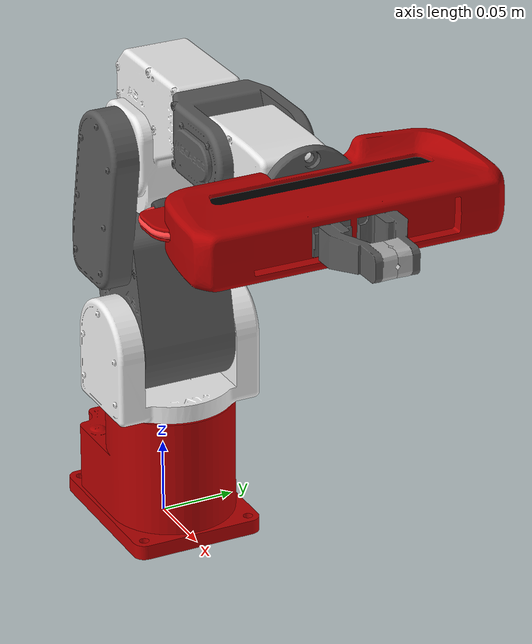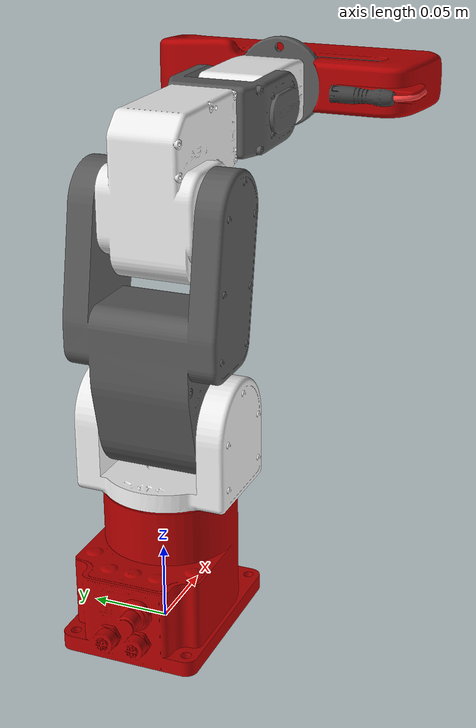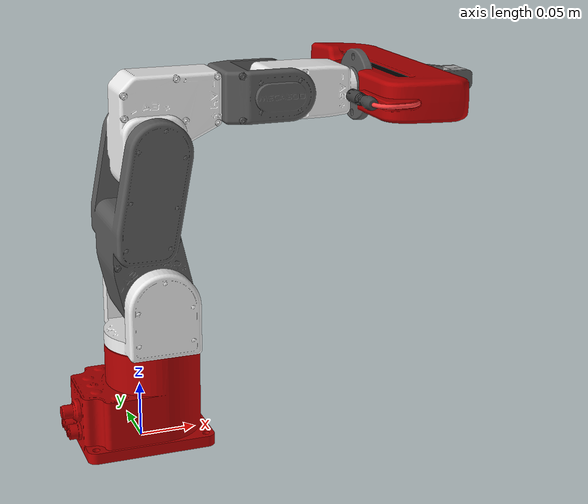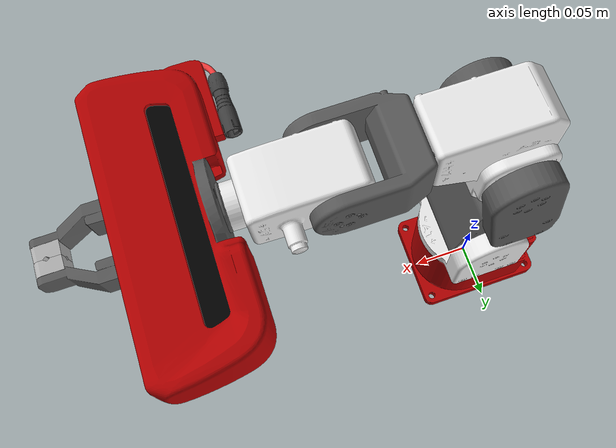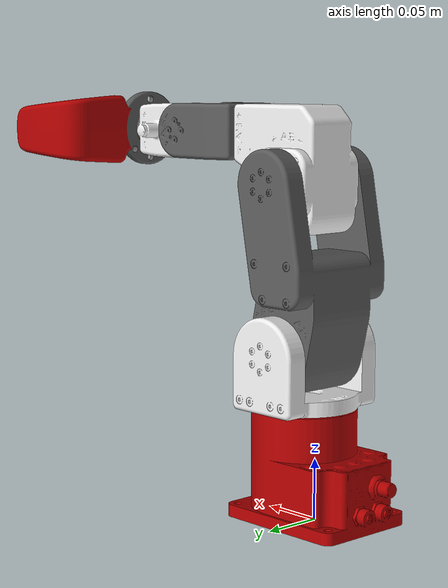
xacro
<?xml version="1.0" encoding="utf-8"?>
<!-- |    This document was autogenerated by xacro from /home/ram/Projects/Project-Interstellar/src/mecademic_description/urdf/meca_500_r3.urdf.xacro | -->
<!-- |    EDITING THIS FILE BY HAND IS NOT RECOMMENDED                                 | -->
<robot name="meca_500_r3">
    <!-- Base link is the center of the robot's bottom plate -->
    <link name="world" />
    <joint name="fixed" type="fixed">
        <parent link="world" />
        <child link="meca_base_link" />
    </joint>
    <link name="meca_base_link">
        <visual>
            <origin rpy="0 0 0" xyz="0 0 0" />
            <geometry>
                <mesh filename="package://mecademic_description/meshes/meca_500_r3_base.dae" />
            </geometry>
        </visual>
        <collision>
            <origin rpy="0 0 0" xyz="0 0 0" />
            <geometry>
                <mesh filename="package://mecademic_description/meshes/meca_500_r3_base_collision.stl" />
            </geometry>
        </collision>

        <inertial>
            <mass value="0.1" />
            <inertia ixx="0.03" ixy="0.0" ixz="0.0" iyy="0.03" iyz="0.0" izz="0.03" />
        </inertial>

    </link>
    <!-- Joint 1 -->
    <link name="meca_axis_1_link">
        <visual>
            <origin rpy="0 0 0" xyz="0 0 0" />
            <geometry>
                <mesh filename="package://mecademic_description/meshes/meca_500_r3_j1.dae" />
            </geometry>
        </visual>
        <collision>
            <origin rpy="0 0 0" xyz="0 0 0" />
            <geometry>
                <mesh filename="package://mecademic_description/meshes/meca_500_r3_j1_collision.stl" />
            </geometry>
        </collision>

        <inertial>
            <mass value="0.1" />
            <inertia ixx="0.03" ixy="0.0" ixz="0.0" iyy="0.03" iyz="0.0" izz="0.03" />
        </inertial>

    </link>
    <joint name="meca_axis_1_joint" type="revolute">
        <origin rpy="0 0 0" xyz="0.012498 0 0.091" />
        <parent link="meca_base_link" />
        <child link="meca_axis_1_link" />
        <axis xyz="0 0 1" />
        <limit effort="1000.0" lower="-3.05433" upper="3.05433" velocity="2.61799" />
    </joint>
    <!-- Joint 2 -->
    <link name="meca_axis_2_link">
        <visual>
            <origin rpy="0 0 0" xyz="0 0 0" />
            <geometry>
                <mesh filename="package://mecademic_description/meshes/meca_500_r3_j2.dae" />
            </geometry>
        </visual>
        <collision>
            <origin rpy="0 0 0" xyz="0 0 0" />
            <geometry>
                <mesh filename="package://mecademic_description/meshes/meca_500_r3_j2_collision.stl" />
            </geometry>
        </collision>

        <inertial>
            <mass value="0.1" />
            <inertia ixx="0.03" ixy="0.0" ixz="0.0" iyy="0.03" iyz="0.0" izz="0.03" />
        </inertial>

    </link>
    <joint name="meca_axis_2_joint" type="revolute">
        <origin rpy="0 0 0" xyz="0 0 0.044" />
        <parent link="meca_axis_1_link" />
        <child link="meca_axis_2_link" />
        <axis xyz="0 1 0" />
        <limit effort="1000.0" lower="-1.22173048" upper="1.5708" velocity="2.61799" />
    </joint>
    <!-- Joint 3 -->
    <link name="meca_axis_3_link">
        <visual>
            <origin rpy="0 0 0" xyz="0 0 0" />
            <geometry>
                <mesh filename="package://mecademic_description/meshes/meca_500_r3_j3.dae" />
            </geometry>
        </visual>
        <collision>
            <origin rpy="0 0 0" xyz="0 0 0" />
            <geometry>
                <mesh filename="package://mecademic_description/meshes/meca_500_r3_j3_collision.stl" />
            </geometry>
        </collision>

        <inertial>
            <mass value="0.1" />
            <inertia ixx="0.03" ixy="0.0" ixz="0.0" iyy="0.03" iyz="0.0" izz="0.03" />
        </inertial>

    </link>
    <joint name="meca_axis_3_joint" type="revolute">
        <origin rpy="0 0 0" xyz="0 0 0.135" />
        <parent link="meca_axis_2_link" />
        <child link="meca_axis_3_link" />
        <axis xyz="0 1 0" />
        <limit effort="1000.0" lower="-2.35619" upper="1.22173048" velocity="3.14159" />
    </joint>
    <!-- Joint 4 -->
    <link name="meca_axis_4_link">
        <visual>
            <origin rpy="0 0 0" xyz="0 0 0" />
            <geometry>
                <mesh filename="package://mecademic_description/meshes/meca_500_r3_j4.dae" />
            </geometry>
        </visual>
        <collision>
            <origin rpy="0 0 0" xyz="0 0 0" />
            <geometry>
                <mesh filename="package://mecademic_description/meshes/meca_500_r3_j4_collision.stl" />
            </geometry>
        </collision>

        <inertial>
            <mass value="0.1" />
            <inertia ixx="0.03" ixy="0.0" ixz="0.0" iyy="0.03" iyz="0.0" izz="0.03" />
        </inertial>

    </link>
    <joint name="meca_axis_4_joint" type="revolute">
        <origin rpy="0 0 0" xyz="0 0 0.038" />
        <parent link="meca_axis_3_link" />
        <child link="meca_axis_4_link" />
        <axis xyz="1 0 0" />
        <limit effort="1000.0" lower="-2.96706" upper="2.96706" velocity="5.23599" />
    </joint>
    <!-- Joint 5 -->
    <link name="meca_axis_5_link">
        <visual>
            <origin rpy="0 0 0" xyz="0 0 0" />
            <geometry>
                <mesh filename="package://mecademic_description/meshes/meca_500_r3_j5.dae" />
            </geometry>
        </visual>
        <collision>
            <origin rpy="0 0 0" xyz="0 0 0" />
            <geometry>
                <mesh filename="package://mecademic_description/meshes/meca_500_r3_j5_collision.stl" />
            </geometry>
        </collision>

        <inertial>
            <mass value="0.1" />
            <inertia ixx="0.03" ixy="0.0" ixz="0.0" iyy="0.03" iyz="0.0" izz="0.03" />
        </inertial>

    </link>
    <joint name="meca_axis_5_joint" type="revolute">
        <origin rpy="0 0 0" xyz="0.12 0 0" />
        <parent link="meca_axis_4_link" />
        <child link="meca_axis_5_link" />
        <axis xyz="0 1 0" />
        <limit effort="1000.0" lower="-2.00713" upper="2.00713" velocity="5.23599" />
    </joint>
    <!-- Joint 6 -->
    <link name="meca_axis_6_link">
        <visual>
            <origin rpy="0 0 0" xyz="0 0 0" />
            <geometry>
                <mesh filename="package://mecademic_description/meshes/meca_500_r3_j6.dae" />
            </geometry>
        </visual>
        <collision>
            <origin rpy="0 0 0" xyz="0 0 0" />
            <geometry>
                <mesh filename="package://mecademic_description/meshes/meca_500_r3_j6_collision.stl" />
            </geometry>
        </collision>

        <inertial>
            <mass value="0.1" />
            <inertia ixx="0.03" ixy="0.0" ixz="0.0" iyy="0.03" iyz="0.0" izz="0.03" />
        </inertial>

    </link>
    <joint name="meca_axis_6_joint" type="revolute">
        <origin rpy="0 0 0" xyz="0.07 0 0" />
        <parent link="meca_axis_5_link" />
        <child link="meca_axis_6_link" />
        <axis xyz="1 0 0" />
        <limit effort="1000.0" lower="-3.14159" upper="3.14159" velocity="5.72665" />
    </joint>
    <!-- ROS-Industrial 'tool0' frame: all-zeros tool frame -->
    <!-- End Effector -->
    <joint name="meca_hand_joint" type="fixed">
        <parent link="meca_axis_6_link" />
        <child link="meca_hand" />
        <origin rpy="0 1.57079632679 0" xyz="0 0 0" />
    </joint>
    <link name="meca_hand">
        <visual>
            <geometry>
                <mesh filename="package://mecademic_description/meshes/hand.dae" />
            </geometry>
        </visual>
        <collision>
            <origin rpy="0 1.57079632679 1.57079632679" xyz="0 0 0.03" />
            <geometry>
                <box size="0.07 0.04 0.2" />
            </geometry>
        </collision>

        <inertial>
            <mass value="0.1" />
            <inertia ixx="0.03" iyy="0.03" izz="0.03" ixy="0.0" ixz="0.0" iyz="0.0" />
        </inertial>

    </link>
    <link name="meca_leftfinger">
        <visual>
            <geometry>
                <mesh filename="package://mecademic_description/meshes/finger.dae" />
            </geometry>
        </visual>
        <inertial>
            <mass value="0.1" />
            <inertia ixx="3.01220925051e-05" ixy="0.0" ixz="0.0" iyy="2.95873808038e-05" iyz="0.0" izz="6.95125211657e-06" />
        </inertial>
        <collision>
            <origin rpy="0 0 0" xyz="0 0 0" />
            <geometry>
                <mesh filename="package://mecademic_description/meshes/finger.dae" />
            </geometry>
        </collision>
    </link>
    <link name="meca_rightfinger">
        <visual>
            <origin rpy="0 0 3.14159265359" xyz="0 0 0" />
            <geometry>
                <mesh filename="package://mecademic_description/meshes/finger.dae" />
            </geometry>

        </visual>
        <inertial>
            <mass value="0.1" />
            <inertia ixx="3.01220925051e-05" ixy="0.0" ixz="0.0" iyy="2.95873808038e-05" iyz="0.0" izz="6.95125211657e-06" />
        </inertial>
        <collision>
            <origin rpy="0 0 3.14159265359" xyz="0 0 0" />
            <geometry>
                <mesh filename="package://mecademic_description/meshes/finger.dae" />
            </geometry>
        </collision>
    </link>
    <joint name="meca_finger_joint1" type="prismatic">
        <parent link="meca_hand" />
        <child link="meca_leftfinger" />
        <origin rpy="0 0 0" xyz="0 0 0.0584" />
        <axis xyz="0 1 0" />
        <limit effort="100" lower="-0.001" upper="0.04" velocity="0.1" />
    </joint>
    <joint name="meca_finger_joint2" type="prismatic">
        <parent link="meca_hand" />
        <child link="meca_rightfinger" />
        <origin rpy="0 0 0" xyz="0 0 0.0584" />
        <axis xyz="0 -1 0" />
        <limit effort="100" lower="-0.001" upper="0.04" velocity="0.1" />
        <mimic joint="meca_finger_joint1" />
    </joint>

    <transmission name="trans_meca_axis_1_joint">
        <type>transmission_interface/SimpleTransmission</type>
        <joint name="meca_axis_1_joint">
            <hardwareInterface>hardware_interface/PositionJointInterface</hardwareInterface>
        </joint>
        <actuator name="meca_axis_1_joint_motor">
            <hardwareInterface>hardware_interface/PositionJointInterface</hardwareInterface>
            <mechanicalReduction>1</mechanicalReduction>
        </actuator>
    </transmission>
    <transmission name="trans_meca_axis_2_joint">
        <type>transmission_interface/SimpleTransmission</type>
        <joint name="meca_axis_2_joint">
            <hardwareInterface>hardware_interface/PositionJointInterface</hardwareInterface>
        </joint>
        <actuator name="meca_axis_2_joint_motor">
            <hardwareInterface>hardware_interface/PositionJointInterface</hardwareInterface>
            <mechanicalReduction>1</mechanicalReduction>
        </actuator>
    </transmission>
    <transmission name="trans_meca_axis_3_joint">
        <type>transmission_interface/SimpleTransmission</type>
        <joint name="meca_axis_3_joint">
            <hardwareInterface>hardware_interface/PositionJointInterface</hardwareInterface>
        </joint>
        <actuator name="meca_axis_3_joint_motor">
            <hardwareInterface>hardware_interface/PositionJointInterface</hardwareInterface>
            <mechanicalReduction>1</mechanicalReduction>
        </actuator>
    </transmission>
    <transmission name="trans_meca_axis_4_joint">
        <type>transmission_interface/SimpleTransmission</type>
        <joint name="meca_axis_4_joint">
            <hardwareInterface>hardware_interface/PositionJointInterface</hardwareInterface>
        </joint>
        <actuator name="meca_axis_4_joint_motor">
            <hardwareInterface>hardware_interface/PositionJointInterface</hardwareInterface>
            <mechanicalReduction>1</mechanicalReduction>
        </actuator>
    </transmission>
    <transmission name="trans_meca_axis_5_joint">
        <type>transmission_interface/SimpleTransmission</type>
        <joint name="meca_axis_5_joint">
            <hardwareInterface>hardware_interface/PositionJointInterface</hardwareInterface>
        </joint>
        <actuator name="meca_axis_5_joint_motor">
            <hardwareInterface>hardware_interface/PositionJointInterface</hardwareInterface>
            <mechanicalReduction>1</mechanicalReduction>
        </actuator>
    </transmission>
    <transmission name="trans_meca_axis_6_joint">
        <type>transmission_interface/SimpleTransmission</type>
        <joint name="meca_axis_6_joint">
            <hardwareInterface>hardware_interface/PositionJointInterface</hardwareInterface>
        </joint>
        <actuator name="meca_axis_6_joint_motor">
            <hardwareInterface>hardware_interface/PositionJointInterface</hardwareInterface>
            <mechanicalReduction>1</mechanicalReduction>
        </actuator>
    </transmission>
    <transmission name="trans_meca_finger_joint1">
        <type>transmission_interface/SimpleTransmission</type>
        <joint name="meca_finger_joint1">
            <hardwareInterface>hardware_interface/EffortJointInterface</hardwareInterface>
        </joint>
        <actuator name="meca_finger_joint1_motor">
            <hardwareInterface>hardware_interface/EffortJointInterface</hardwareInterface>
            <mechanicalReduction>1</mechanicalReduction>
        </actuator>
    </transmission>
    <transmission name="trans_meca_finger_joint2">
        <type>transmission_interface/SimpleTransmission</type>
        <joint name="meca_finger_joint2">
            <hardwareInterface>hardware_interface/EffortJointInterface</hardwareInterface>
        </joint>
        <actuator name="meca_finger_joint2_motor">
            <hardwareInterface>hardware_interface/EffortJointInterface</hardwareInterface>
            <mechanicalReduction>1</mechanicalReduction>
        </actuator>
    </transmission>
    <gazebo>
        <plugin name="gazebo_ros_control" filename="libgazebo_ros_control.so">
        </plugin>
    </gazebo>
    <gazebo>
        <plugin name="mimic_joint_plugin" filename="libroboticsgroup_upatras_gazebo_mimic_joint_plugin.so">
            <joint>meca_finger_joint1</joint>
            <mimicJoint>meca_finger_joint2</mimicJoint>
        </plugin>
    </gazebo>
    <gazebo reference="meca_rightfinger">
        <mu1>100</mu1>
        <mu2>100</mu2>
        <kp>100000</kp>
        <collision name="meca_leftfinger_collision">
            <surface>
                <friction>
                    <torsional>
                        <coefficient>100</coefficient>
                        <use_patch_radius>true</use_patch_radius>
                        <patch_radius>0.1</patch_radius>
                        <surface_radius>0.1</surface_radius>
                    </torsional>
                </friction>
            </surface>
        </collision>
    </gazebo>
    <gazebo reference="meca_leftfinger">
        <mu1>100</mu1>
        <mu2>100</mu2>
        <kp>100000</kp>
        <collision name="meca_rightfinger_collision">
            <surface>
                <friction>
                    <torsional>
                        <coefficient>100</coefficient>
                        <use_patch_radius>true</use_patch_radius>
                        <patch_radius>0.1</patch_radius>
                        <surface_radius>0.1</surface_radius>
                    </torsional>
                </friction>
            </surface>
        </collision>
    </gazebo>
    <gazebo reference="meca_finger_joint1">
        <implicitSpringDamper>1</implicitSpringDamper>
    </gazebo>
    <gazebo reference="meca_finger_joint2">
        <implicitSpringDamper>1</implicitSpringDamper>
    </gazebo>
    <gazebo>
        <plugin name="gazebo_grasp_fix" filename="libgazebo_grasp_fix.so">
            <arm>
                <arm_name>meca_arm</arm_name>
                <palm_link>meca_axis_6_link</palm_link>
                <gripper_link>meca_leftfinger</gripper_link>
                <gripper_link> meca_rightfinger </gripper_link>

            </arm>
            <forces_angle_tolerance>100</forces_angle_tolerance>
            <update_rate>30</update_rate>
            <grip_count_threshold>1</grip_count_threshold>
            <max_grip_count>2</max_grip_count>
            <release_tolerance>0.003</release_tolerance>
            <disable_collisions_on_attach>false</disable_collisions_on_attach>
            <contact_topic>__default_topic__</contact_topic>
        </plugin>
    </gazebo>

</robot>
